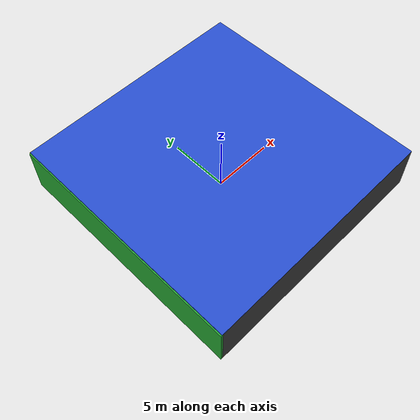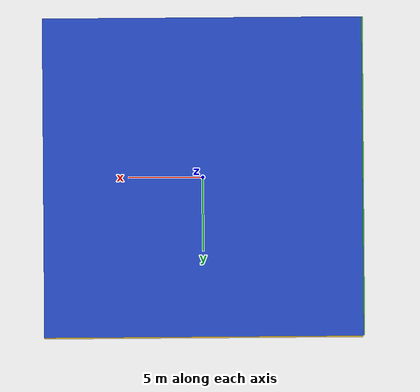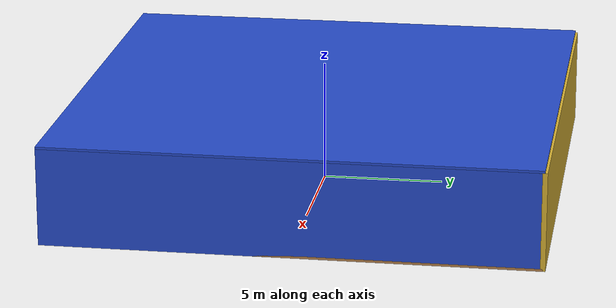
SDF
<sdf version="1.4">
 <world name="default">
  <physics type="ode">
   <max_step_size>0.001</max_step_size>
   <real_time_factor>1</real_time_factor>
   <real_time_update_rate>1000</real_time_update_rate>
   <gravity>0 0 -9.8</gravity>
  </physics>
  <scene><ambient>0.4 0.4 0.4 1</ambient><background>0.7 0.7 0.7 1</background><shadows>1</shadows></scene>
  <model name="Surrounding">
   <static>1</static>
   <link name="Ceiling">
    <collision name="Ceiling_Collision"><geometry><box><size>20 20 0.1</size></box></geometry></collision>
    <visual name="Ceiling_Visual">
     <geometry><box><size>20 20 0.1</size></box></geometry>
     <material>
      <script><uri>file://media/materials/scripts/gazebo.material</uri><name>Gazebo/Blue</name></script>
     </material>
    </visual>
    <pose>0 0 4.05 0 0 0</pose>
   </link>
   <link name="Wall_South">
    <collision name="Wall_South_Collision">
     <geometry><box><size>20 0 4</size></box></geometry>
     <pose>0 0 2 0 -0 0</pose>
    </collision>
    <visual name="Wall_South_Visual">
     <pose>0 0 2 0 -0 0</pose>
     <geometry><box><size>20 0 4</size></box></geometry>
     <material>
      <script><uri>file://media/materials/scripts/gazebo.material</uri><name>Gazebo/Road</name></script>
     </material>
    </visual>
    <velocity_decay><linear>0</linear><angular>0</angular></velocity_decay>
    <pose>0 -10 0 0 -0 0</pose>
   </link>
   <link name="Wall_East">
    <collision name="Wall_21_Collision">
     <geometry><box><size>20 0 4</size></box></geometry>
     <pose>0 0 2 0 -0 0</pose>
    </collision>
    <visual name="Wall_21_Visual">
     <pose>0 0 2 0 -0 0</pose>
     <geometry><box><size>20 0 4</size></box></geometry>
     <material>
      <script><uri>file://media/materials/scripts/gazebo.material</uri><name>Gazebo/BlueGlow</name></script>
     </material>
    </visual>
    <velocity_decay><linear>0</linear><angular>0</angular></velocity_decay>
    <pose>10 0 0 0 -0 1.5708</pose>
   </link>
   <link name="Wall_North">
    <collision name="Wall_22_Collision">
     <geometry><box><size>20 0.2 4</size></box></geometry>
     <pose>0 0 2 0 -0 0</pose>
    </collision>
    <visual name="Wall_22_Visual">
     <pose>0 0 2 0 -0 0</pose>
     <geometry><box><size>20 0.2 4</size></box></geometry>
     <material>
      <script><uri>file://media/materials/scripts/gazebo.material</uri><name>Gazebo/Gold</name></script>
     </material>
    </visual>
    <velocity_decay><linear>0</linear><angular>0</angular></velocity_decay>
    <pose>0 10 0 0 -0 0</pose>
   </link>
   <link name="Wall_West">
    <collision name="Wall_23_Collision">
     <geometry><box><size>20 0.2 4</size></box></geometry>
     <pose>0 0 2 0 -0 0</pose>
    </collision>
    <visual name="Wall_23_Visual">
     <pose>0 0 2 0 -0 0</pose>
     <geometry><box><size>20 0.2 4</size></box></geometry>
     <material>
      <script><uri>file://media/materials/scripts/gazebo.material</uri><name>Gazebo/GreenGlow</name></script>
     </material>
    </visual>
    <velocity_decay><linear>0</linear><angular>0</angular></velocity_decay>
    <pose>-10 0 0 0 0 -1.5708</pose>
   </link>
   <link name="Ground_link">
    <collision name="collision">
     <pose>0 0 .05 0 -0 0</pose>
     <geometry><box><size>20 20 0.1</size></box></geometry>
    </collision>
    <visual name="visual">
     <pose>0 0 .05 0 -0 0</pose>
     <geometry><box><size>20 20 0.1</size></box></geometry>
     <material>
      <script><uri>file://media/materials/scripts/gazebo.material</uri><name>Gazebo/WoodPallet</name></script>
     </material>
    </visual>
   </link>
   <static>1</static>
  </model>
  <spherical_coordinates>
   <surface_model>EARTH_WGS84</surface_model>
   <latitude_deg>0</latitude_deg>
   <longitude_deg>0</longitude_deg>
   <elevation>0</elevation>
   <heading_deg>0</heading_deg>
  </spherical_coordinates>
  <light name="lightball_0" type="diffuse">
   <diffuse>0.8 0.8 0.8 1</diffuse>
   <specular>0.2 0.2 0.2 1</specular>
   <attenuation>
    <range>100</range>
    <constant>0.7</constant>
    <linear>0.01</linear>
    <quadratic>0.001</quadratic>
   </attenuation>
   <direction>-0.5 0.1 -0.9</direction>
   <pose>4.84046916334 -3.83448102886 1.34632537619 0 0 0</pose>
  </light>
  <light name="lightball_1" type="diffuse">
   <diffuse>0.8 0.8 0.8 1</diffuse>
   <specular>0.2 0.2 0.2 1</specular>
   <attenuation>
    <range>100</range>
    <constant>0.7</constant>
    <linear>0.01</linear>
    <quadratic>0.001</quadratic>
   </attenuation>
   <direction>-0.5 0.1 -0.9</direction>
   <pose>-8.2986935186 -8.84299059503 1.80972671588 0 0 0</pose>
  </light>
  <light name="lightball_2" type="diffuse">
   <diffuse>0.8 0.8 0.8 1</diffuse>
   <specular>0.2 0.2 0.2 1</specular>
   <attenuation>
    <range>100</range>
    <constant>0.7</constant>
    <linear>0.01</linear>
    <quadratic>0.001</quadratic>
   </attenuation>
   <direction>-0.5 0.1 -0.9</direction>
   <pose>-0.493730728955 -3.01575826016 2.90034387223 0 0 0</pose>
  </light>
  <light name="lightball_3" type="diffuse">
   <diffuse>0.8 0.8 0.8 1</diffuse>
   <specular>0.2 0.2 0.2 1</specular>
   <attenuation>
    <range>100</range>
    <constant>0.7</constant>
    <linear>0.01</linear>
    <quadratic>0.001</quadratic>
   </attenuation>
   <direction>-0.5 0.1 -0.9</direction>
   <pose>-7.70533692147 7.02837067104 1.62001361246 0 0 0</pose>
  </light>
  <light name="lightball_4" type="diffuse">
   <diffuse>0.8 0.8 0.8 1</diffuse>
   <specular>0.2 0.2 0.2 1</specular>
   <attenuation>
    <range>100</range>
    <constant>0.7</constant>
    <linear>0.01</linear>
    <quadratic>0.001</quadratic>
   </attenuation>
   <direction>-0.5 0.1 -0.9</direction>
   <pose>-9.92858579696 -3.83103954175 2.55792570564 0 0 0</pose>
  </light>
  <light name="lightball_5" type="diffuse">
   <diffuse>0.8 0.8 0.8 1</diffuse>
   <specular>0.2 0.2 0.2 1</specular>
   <attenuation>
    <range>100</range>
    <constant>0.7</constant>
    <linear>0.01</linear>
    <quadratic>0.001</quadratic>
   </attenuation>
   <direction>-0.5 0.1 -0.9</direction>
   <pose>-5.46524014619 6.81173218228 3.054774592 0 0 0</pose>
  </light>
  <light name="lightball_6" type="diffuse">
   <diffuse>0.8 0.8 0.8 1</diffuse>
   <specular>0.2 0.2 0.2 1</specular>
   <attenuation>
    <range>100</range>
    <constant>0.7</constant>
    <linear>0.01</linear>
    <quadratic>0.001</quadratic>
   </attenuation>
   <direction>-0.5 0.1 -0.9</direction>
   <pose>6.99950959992 -3.73437646484 2.06338675592 0 0 0</pose>
  </light>
  <light name="lightball_7" type="diffuse">
   <diffuse>0.8 0.8 0.8 1</diffuse>
   <specular>0.2 0.2 0.2 1</specular>
   <attenuation>
    <range>100</range>
    <constant>0.7</constant>
    <linear>0.01</linear>
    <quadratic>0.001</quadratic>
   </attenuation>
   <direction>-0.5 0.1 -0.9</direction>
   <pose>-5.80524008066 -6.05347831753 1.11166743956 0 0 0</pose>
  </light>
  <light name="lightball_8" type="diffuse">
   <diffuse>0.8 0.8 0.8 1</diffuse>
   <specular>0.2 0.2 0.2 1</specular>
   <attenuation>
    <range>100</range>
    <constant>0.7</constant>
    <linear>0.01</linear>
    <quadratic>0.001</quadratic>
   </attenuation>
   <direction>-0.5 0.1 -0.9</direction>
   <pose>9.39946301997 -0.0815850632358 1.52152882378 0 0 0</pose>
  </light>
  <light name="lightball_9" type="diffuse">
   <diffuse>0.8 0.8 0.8 1</diffuse>
   <specular>0.2 0.2 0.2 1</specular>
   <attenuation>
    <range>100</range>
    <constant>0.7</constant>
    <linear>0.01</linear>
    <quadratic>0.001</quadratic>
   </attenuation>
   <direction>-0.5 0.1 -0.9</direction>
   <pose>-8.83123970069 0.339399373111 1.3001467806 0 0 0</pose>
  </light>
  <light name="lightball_10" type="diffuse">
   <diffuse>0.8 0.8 0.8 1</diffuse>
   <specular>0.2 0.2 0.2 1</specular>
   <attenuation>
    <range>100</range>
    <constant>0.7</constant>
    <linear>0.01</linear>
    <quadratic>0.001</quadratic>
   </attenuation>
   <direction>-0.5 0.1 -0.9</direction>
   <pose>-5.72888340338 -7.2062876873 3.70054712267 0 0 0</pose>
  </light>
  <light name="lightball_11" type="diffuse">
   <diffuse>0.8 0.8 0.8 1</diffuse>
   <specular>0.2 0.2 0.2 1</specular>
   <attenuation>
    <range>100</range>
    <constant>0.7</constant>
    <linear>0.01</linear>
    <quadratic>0.001</quadratic>
   </attenuation>
   <direction>-0.5 0.1 -0.9</direction>
   <pose>-4.13098537955 -1.49937386569 2.18227459707 0 0 0</pose>
  </light>
  <include><uri>model://cabinet</uri><pose>-0.708026909117 -6.44777236477 0 0 0 2.67917779324</pose></include>
  <include><uri>model://cabinet</uri><pose>5.14661628564 -4.58650070519 0 0 0 0.435797170913</pose></include>
 </world>
</sdf>

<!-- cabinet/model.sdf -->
<sdf version="1.5">
  <model name="cabinet">
    <static>true</static>
    <link name="cabinet_bottom_plate">
      <inertial>
        <pose>0 0 -1 0 0 0</pose>
        <inertia>
          <ixx>2.050000</ixx>
          <ixy>0</ixy>
          <ixz>0</ixz>
          <iyy>2.050000</iyy>
          <iyz>0</iyz>
          <izz>2.050000</izz>
        </inertia>
        <mass>25.000000</mass>
      </inertial>
      <collision name="cabinet_bottom_plate_geom">
        <pose>0 0 0.010000 0 0 0</pose>
        <geometry>
          <box>
            <size>0.450000 0.450000 0.020000</size>
          </box>
        </geometry>
      </collision>
      <visual name="cabinet_bottom_plate_geom_visual">
        <pose>0 0 0.010000 0 0 0</pose>
        <geometry>
          <box>
            <size>0.450000 0.450000 0.020000</size>
          </box>
        </geometry>
        <material>
          <script>
            <uri>model://media/materials/scripts/gazebo.material</uri>
            <name>Gazebo/Wood</name>
          </script>
        </material>
      </visual>
      <collision name="cabinet_bottom_plate_geom_cabinet_back_plate">
        <pose>0.235000 0 0.510000 0 0 0</pose>
        <geometry>
          <box>
            <size>0.020000 0.450000 1.020000</size>
          </box>
        </geometry>
      </collision>
      <visual name="cabinet_bottom_plate_geom_cabinet_back_plate_visual">
        <pose>0.235000 0 0.510000 0 0 0</pose>
        <geometry>
          <box>
            <size>0.020000 0.450000 1.020000</size>
          </box>
        </geometry>
        <material>
          <script>
            <uri>model://media/materials/scripts/gazebo.material</uri>
            <name>Gazebo/Wood</name>
          </script>
        </material>
      </visual>
      <collision name="cabinet_bottom_plate_geom_cabinet_left_plate">
        <pose>0 0.235000 0.510000 0 0 0</pose>
        <geometry>
          <box>
            <size>0.450000 0.020000 1.020000</size>
          </box>
        </geometry>
      </collision>
      <visual name="cabinet_bottom_plate_geom_cabinet_left_plate_visual">
        <pose>0 0.235000 0.510000 0 0 0</pose>
        <geometry>
          <box>
            <size>0.450000 0.020000 1.020000</size>
          </box>
        </geometry>
        <material>
          <script>
            <uri>model://media/materials/scripts/gazebo.material</uri>
            <name>Gazebo/Wood</name>
          </script>
        </material>
      </visual>
      <collision name="cabinet_bottom_plate_geom_cabinet_middle_plate">
        <pose>0 0 0.510000 0 0 0</pose>
        <geometry>
          <box>
            <size>0.450000 0.450000 0.020000</size>
          </box>
        </geometry>
      </collision>
      <visual name="cabinet_bottom_plate_geom_cabinet_middle_plate_visual">
        <pose>0 0 0.510000 0 0 0</pose>
        <geometry>
          <box>
            <size>0.450000 0.450000 0.020000</size>
          </box>
        </geometry>
        <material>
          <script>
            <uri>model://media/materials/scripts/gazebo.material</uri>
            <name>Gazebo/Wood</name>
          </script>
        </material>
      </visual>
      <collision name="cabinet_bottom_plate_geom_cabinet_right_plate">
        <pose>0 -0.235000 0.510000 0 0 0</pose>
        <geometry>
          <box>
            <size>0.450000 0.020000 1.020000</size>
          </box>
        </geometry>
      </collision>
      <visual name="cabinet_bottom_plate_geom_cabinet_right_plate_visual">
        <pose>0 -0.235000 0.510000 0 0 0</pose>
        <geometry>
          <box>
            <size>0.450000 0.020000 1.020000</size>
          </box>
        </geometry>
        <material>
          <script>
            <uri>model://media/materials/scripts/gazebo.material</uri>
            <name>Gazebo/Wood</name>
          </script>
        </material>
      </visual>
      <collision name="cabinet_bottom_plate_geom_cabinet_top_plate">
        <pose>0 0 1.010000 0 0 0</pose>
        <geometry>
          <box>
            <size>0.450000 0.450000 0.020000</size>
          </box>
        </geometry>
      </collision>
      <visual name="cabinet_bottom_plate_geom_cabinet_top_plate_visual">
        <pose>0 0 1.010000 0 0 0</pose>
        <geometry>
          <box>
            <size>0.450000 0.450000 0.020000</size>
          </box>
        </geometry>
        <material>
          <script>
            <uri>model://media/materials/scripts/gazebo.material</uri>
            <name>Gazebo/Wood</name>
          </script>
        </material>
      </visual>
    </link>
  </model>
</sdf>
